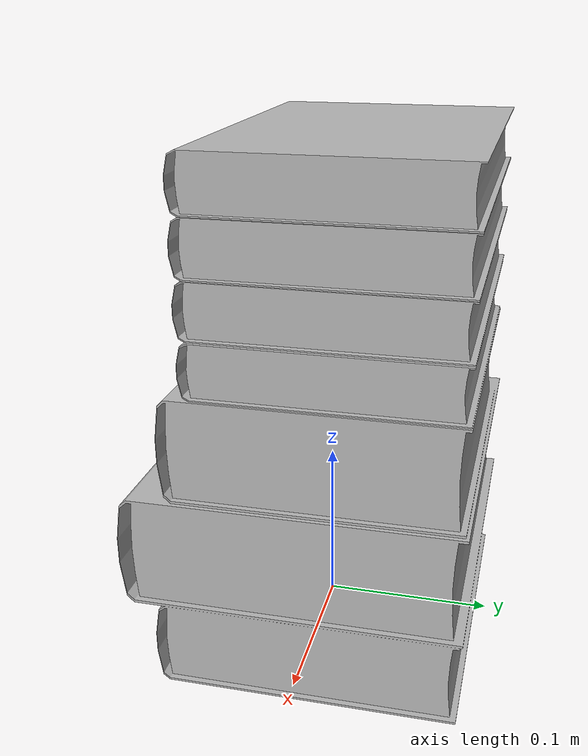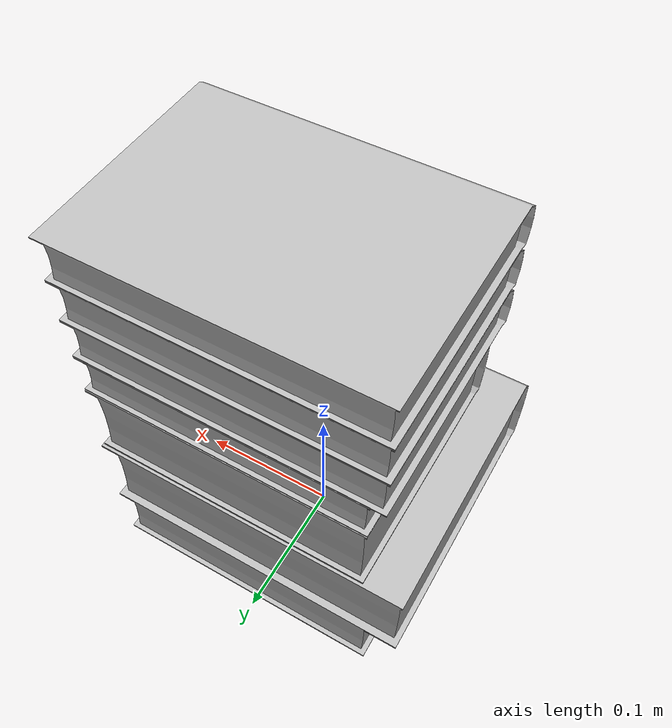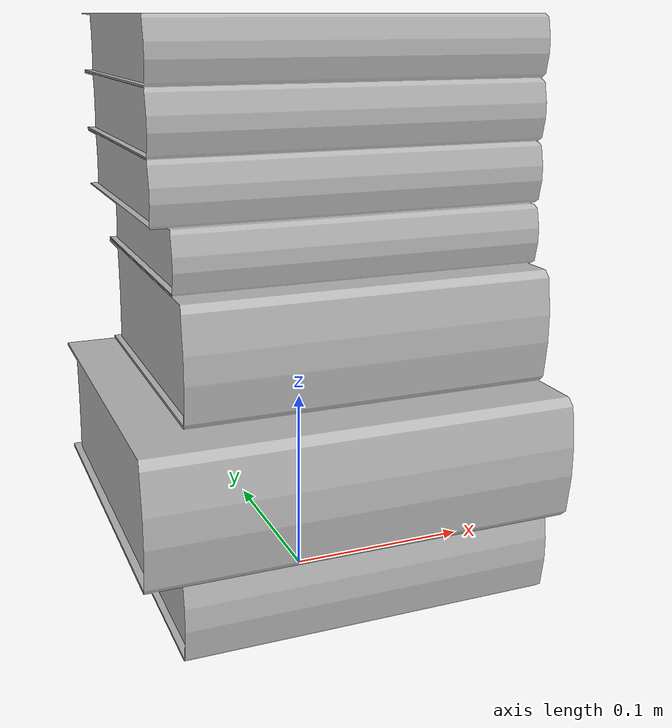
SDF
<?xml version='1.0'?>
<sdf version='1.4'>
  <model name='319'>
    <pose>0 0 0 0 0 0</pose>
    <static>true</static>
    <link name='link'>
      <collision name='collision'>
        <pose>0 0 0 0 0 0</pose>
        <geometry>
          <box>
            <size>0.22 0.19 2</size>
          </box>
        </geometry>
      </collision>
      <visual name='visual'>
        <pose>0 0 0 0 0 0</pose>
        <geometry>
          <mesh><uri>model://319/319.dae</uri></mesh>
        </geometry>
      </visual>
    </link>
  </model>
</sdf>
